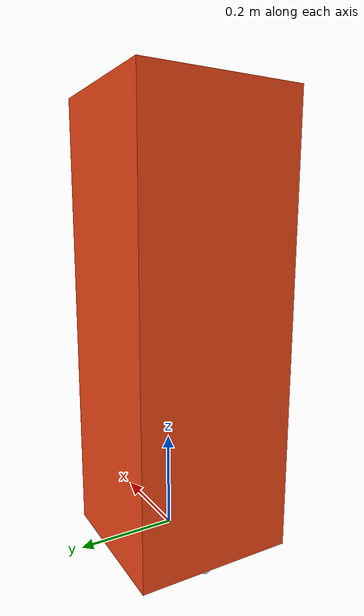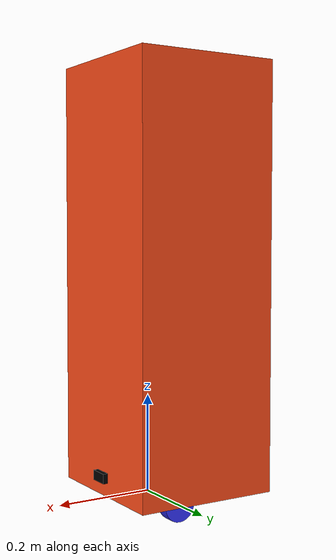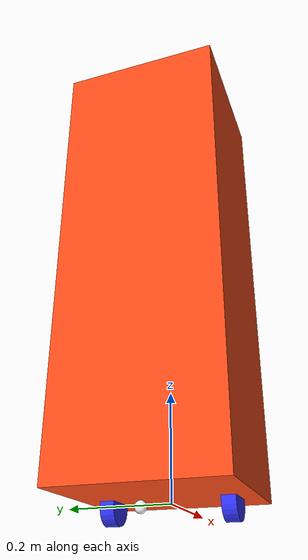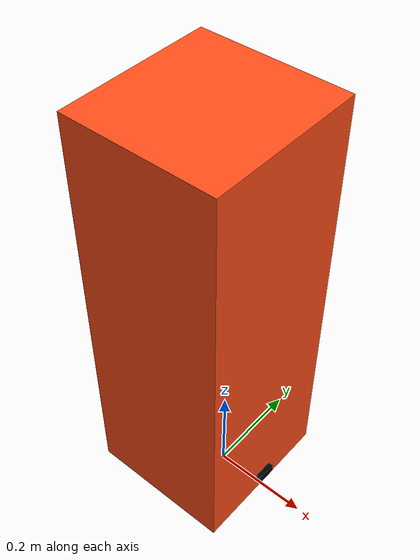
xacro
<?xml version="1.0"?>
<robot xmlns:xacro="http://www.ros.org/wiki/xacro" >

    <xacro:include filename="inertial_macros.xacro"/>
    <xacro:include filename="ultrasonic.xacro"/> <xacro:property name="chassis_length" value="0.335"/>

    <xacro:property name="chassis_length" value="0.30"/>
    <xacro:property name="chassis_width" value="0.315"/>
    <xacro:property name="chassis_height" value="0.87"/>
    <xacro:property name="chassis_mass" value="1.0"/>
    <xacro:property name="wheel_radius" value="0.033"/>
    <xacro:property name="wheel_thickness" value="0.026"/>
    <xacro:property name="wheel_mass" value="0.05"/>
    <xacro:property name="wheel_offset_x" value="0.195"/>
    <xacro:property name="wheel_offset_y" value="0.11"/>
    <xacro:property name="wheel_offset_z" value="0.007"/>
    <xacro:property name="caster_wheel_radius" value="0.01"/>
    <xacro:property name="caster_wheel_mass" value="0.01"/>
    <xacro:property name="caster_wheel_offset_x" value="0.045"/>
    <xacro:property name="caster_wheel_offset_z" value="${-wheel_offset_z - wheel_radius + caster_wheel_radius}"/>
    <xacro:property name="us_angle" value="0.104"/>

    <material name="white">
        <color rgba="1 1 1 1" />
    </material>

    <material name="orange">
        <color rgba="1 0.3 0.1 1"/>
    </material>

    <material name="blue">
        <color rgba="0.2 0.2 1 1"/>
    </material>

    <material name="black">
        <color rgba="0 0 0 1"/>
    </material>

    <material name="red">
        <color rgba="1 0 0 1"/>
    </material>

    <!-- BASE LINK -->

    <link name="base_link">

    </link>

    <!-- BASE_FOOTPRINT LINK -->

    <joint name="base_footprint_joint" type="fixed">
        <parent link="base_link"/>
        <child link="base_footprint"/>
        <origin xyz="0 0 0" rpy="0 0 0"/>
    </joint>

    <link name="base_footprint">
    </link>

    <!-- CHASSIS LINK -->

    <joint name="chassis_joint" type="fixed">
        <parent link="base_link"/>
        <child link="chassis"/>
        <origin xyz="${-wheel_offset_x} 0 ${wheel_offset_z}"/>
    </joint>

    <link name="chassis">
        <visual>
            <origin xyz="${chassis_length/2} 0 ${chassis_height/2}"/>
            <geometry>
                <box size="${chassis_length} ${chassis_width} ${chassis_height}"/>
            </geometry>
            <material name="orange"/>
        </visual>
        <collision>
            <origin xyz="${chassis_length/2} 0 ${chassis_height/2}"/>
            <geometry>
                <box size="${chassis_length} ${chassis_width} ${chassis_height}"/>
            </geometry>
        </collision>
        <xacro:inertial_box mass="2.5" x="${chassis_length}" y="${chassis_width}" z="${chassis_height}">
            <origin xyz="${chassis_length/2} 0 ${chassis_height/2}" rpy="0 0 0"/>
        </xacro:inertial_box>
    </link>

    <gazebo reference="chassis">
        <material>Gazebo/Orange</material>
    </gazebo>

    <!-- LEFT WHEEL LINK -->

    <joint name="left_wheel_joint" type="continuous">
        <parent link="base_link"/>
        <child link="left_wheel"/>
        <origin xyz="0 ${wheel_offset_y} 0" rpy="-${pi/2} 0 0" />
        <axis xyz="0 0 1"/>
    </joint>

    <link name="left_wheel">
        <visual>
            <geometry>
                <cylinder radius="${wheel_radius}" length="${wheel_thickness}"/>
            </geometry>
            <material name="blue"/>
        </visual>
        <collision>
            <geometry>
                <sphere radius="${wheel_radius}"/>
            </geometry>
        </collision>
        <xacro:inertial_cylinder mass="${wheel_mass}" length="${wheel_thickness}" radius="${wheel_radius}">
            <origin xyz="0 0 0" rpy="0 0 0"/>
        </xacro:inertial_cylinder>
    </link>

    <gazebo reference="left_wheel">
        <material>Gazebo/Blue</material>
    </gazebo>

    <!-- RIGHT WHEEL LINK -->

    <joint name="right_wheel_joint" type="continuous">
        <parent link="base_link"/>
        <child link="right_wheel"/>
        <origin xyz="0 ${-wheel_offset_y} 0" rpy="${pi/2} 0 0" />
        <axis xyz="0 0 -1"/>
    </joint>

    <link name="right_wheel">
        <visual>
            <geometry>
                <cylinder radius="${wheel_radius}" length="${wheel_thickness}"/>
            </geometry>
            <material name="blue"/>
        </visual>
        <collision>
            <geometry>
                <sphere radius="${wheel_radius}"/>
            </geometry>
        </collision>
        <xacro:inertial_cylinder mass="${wheel_mass}" length="${wheel_thickness}" radius="${wheel_radius}">
            <origin xyz="0 0 0" rpy="0 0 0"/>
        </xacro:inertial_cylinder>
    </link>

    <gazebo reference="right_wheel">
        <material>Gazebo/Blue</material>
    </gazebo>

    <!-- CASTER WHEEL LINK -->

    <joint name="caster_wheel_joint" type="fixed">
        <parent link="chassis"/>
        <child link="caster_wheel"/>
        <origin xyz="${caster_wheel_offset_x} 0 ${caster_wheel_offset_z}"/>
    </joint>

    <link name="caster_wheel">
        <visual>
            <geometry>
                <sphere radius="${caster_wheel_radius}"/>
            </geometry>
            <material name="white"/>
        </visual>
        <collision>
            <geometry>
                <sphere radius="${caster_wheel_radius}"/>
            </geometry>
        </collision>
        <xacro:inertial_sphere mass="${caster_wheel_mass}" radius="${caster_wheel_radius}">
            <origin xyz="0 0 0" rpy="0 0 0"/>
        </xacro:inertial_sphere>
    </link>

    <gazebo reference="caster_wheel">
        <material>Gazebo/White</material>
        <mu1 value="0.001"/>
        <mu2 value="0.001"/>
    </gazebo>

<xacro:ultrasonic_sensor name="us_center"
        x="${chassis_length}" y="0" z="0.038"
        roll="0" pitch="0" yaw="0" />

    <xacro:ultrasonic_sensor name="us_left"
        x="0.14" y="0.11" z="0.038"
        roll="0" pitch="0" yaw="${pi/2+us_angle}" />

    <xacro:ultrasonic_sensor name="us_right"
        x="0.14" y="-0.11" z="0.038"
        roll="0" pitch="0" yaw="-${pi/2+us_angle}" />

</robot>

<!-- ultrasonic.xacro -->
<robot xmlns:xacro="http://www.ros.org/wiki/xacro" >
<xacro:macro name="ultrasonic_sensor" params="name x y z roll pitch yaw">

        <link name="${name}_link">
            <visual>
                <geometry>
                    <box size="0.02 0.04 0.02"/>
                </geometry>
                <material name="black"/>
            </visual>
            <collision>
                <geometry>
                    <box size="0.02 0.04 0.02"/>
                </geometry>
            </collision>
            <xacro:inertial_box mass="0.01" x="0.02" y="0.04" z="0.02">
                <origin xyz="0 0 0" rpy="0 0 0"/>
            </xacro:inertial_box>
        </link>

        <joint name="${name}_joint" type="fixed">
            <parent link="chassis"/>
            <child link="${name}_link"/>
            <origin xyz="${x} ${y} ${z}" rpy="${roll} ${pitch} ${yaw}"/>
        </joint>

        <gazebo reference="${name}_link">
            <material>Gazebo/Black</material>
            <sensor name="${name}" type="gpu_lidar">
                <pose>0 0 0 0 0 0</pose>
                <topic>${name}/scan</topic>
                <update_rate>10</update_rate>
                <visualize>true</visualize>
                <gz_frame_id>${name}_link</gz_frame_id>
                <frame_id>${name}_link</frame_id>
                <lidar>
                    <scan>
                        <horizontal>
                            <samples>5</samples>
                            <resolution>1</resolution>
                            <min_angle>-0.26</min_angle>
                            <max_angle>0.26</max_angle>
                        </horizontal>
                    </scan>
                    <range>
                        <min>0.02</min>      <max>4.0</max>       <resolution>0.01</resolution>
                    </range>
                </lidar>
            </sensor>
        </gazebo>
    </xacro:macro>

</robot>
